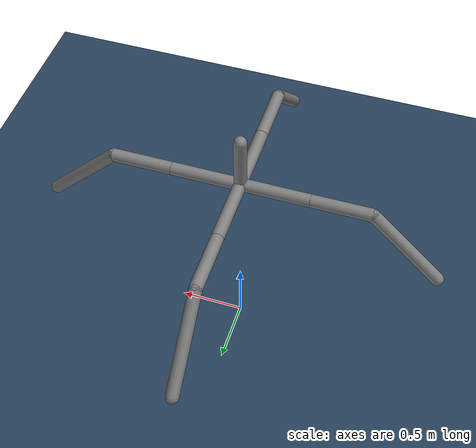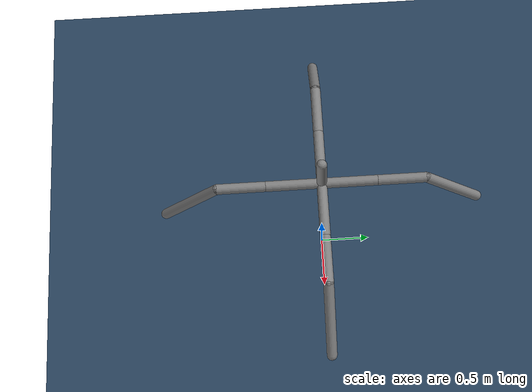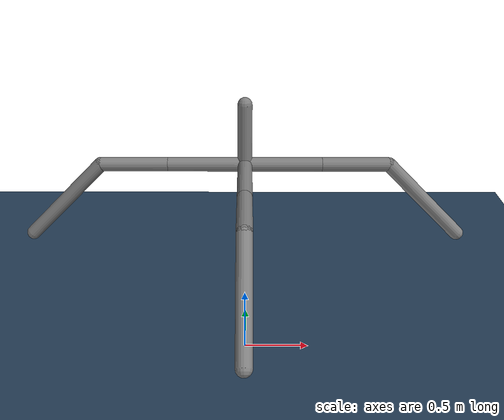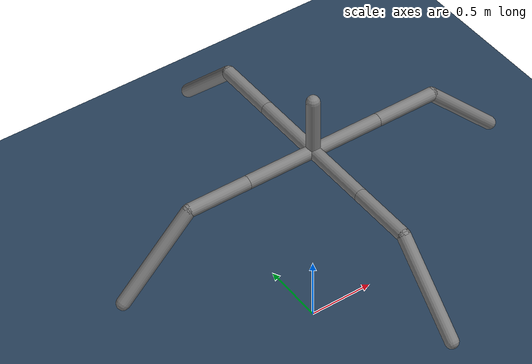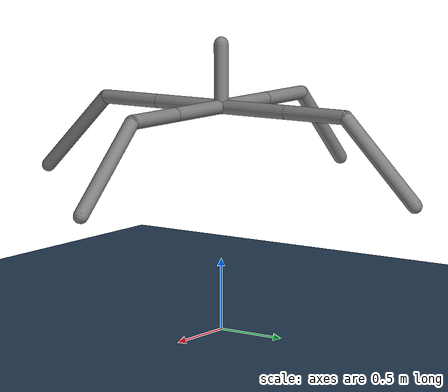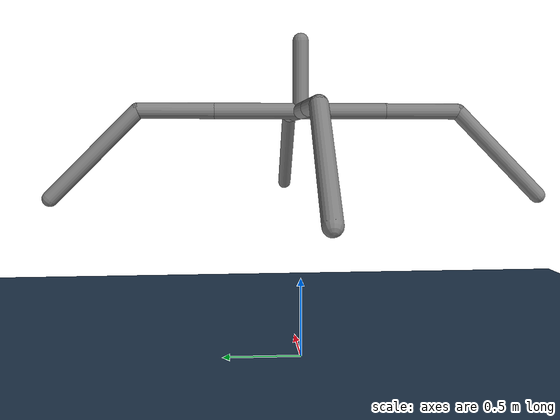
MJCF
<mujoco>
  <compiler meshdir="./mesh"/>
  <default>
    <motor ctrlrange="-1. 1." ctrllimited="true"/>
  </default>

  <worldbody>
    <geom name="floor" size="0 0 .05" type="plane" material="grid" condim="3"/>
    <camera name="cam0" pos="-0.5 -7.5 3" xyaxes="1 -0.05 0 0 0.3 1" mode="trackcom"/>
    <body name="root" pos="0 0 2">
    <joint type="free"/>
      <geom type="capsule" name="root geom" size="0.05" fromto="0 0 0 -0.0 0.0 -0.43334996700286865"/>
      <body name="body1_l" pos="-0.0 0.0 -0.43334996700286865">
        <geom type="capsule" name="body1_l geom" size="0.05" fromto="0 0 0 0.5378625392913818 0.0 0.0"/>
        <body name="leg1_l" pos="0.5378625392913818 0.0 0.0">
          <joint axis="0 0 1" name="j0" range="-45 45"/>
          <geom type="capsule" name="leg1_l geom" size="0.05" fromto="0 0 0 0.46852874755859375 0.0 0.0"/>
          <body name="foot1_l" pos="0.46852874755859375 0.0 0.0">
            <joint axis="0 1 0" name="j4" range="-45 45"/>
            <geom type="capsule" name="foot1_l geom" size="0.05" fromto="0 0 0 0.5399634838104248 7.254887179897196e-08 -0.5399635434150696"/>
          </body>
        </body>
      </body>
      <body name="body1_r" pos="-0.0 0.0 -0.43334996700286865">
        <geom type="capsule" name="body1_r geom" size="0.05" fromto="0 0 0 -0.5378625392913818 0.0 0.0"/>
        <body name="leg1_r" pos="-0.5378625392913818 0.0 0.0">
          <joint axis="0 0 1" name="j1" range="-45 45"/>
          <geom type="capsule" name="leg1_r geom" size="0.05" fromto="0 0 0 -0.46852874755859375 0.0 0.0"/>
          <body name="foot1_r" pos="-0.46852874755859375 0.0 0.0">
            <joint axis="0 1 0" name="j5" range="-45 45"/>
            <geom type="capsule" name="foot1_r geom" size="0.05" fromto="0 0 0 -0.5399634838104248 7.254887179897196e-08 -0.5399635434150696"/>
          </body>
        </body>
      </body>
      <body name="body1_l.001" pos="-0.0 0.0 -0.43334996700286865">
        <geom type="capsule" name="body1_l.001 geom" size="0.05" fromto="0 0 0 2.7644951217098424e-08 0.5378625392913818 0.0"/>
        <body name="leg1_l.001" pos="2.7644951217098424e-08 0.5378625392913818 0.0">
          <joint axis="0 0 1" name="j2" range="-45 45"/>
          <geom type="capsule" name="leg1_l.001 geom" size="0.05" fromto="0 0 0 5.960464477539063e-08 0.46852874755859375 0.0"/>
          <body name="foot1_l.001" pos="5.960464477539063e-08 0.46852874755859375 0.0">
            <joint axis="1 0 0" name="j6" range="-45 45"/>
            <geom type="capsule" name="foot1_l.001 geom" size="0.05" fromto="0 0 0 0.0 0.5399634838104248 -0.5399635434150696"/>
          </body>
        </body>
      </body>
      <body name="body1_r.001" pos="-0.0 0.0 -0.43334996700286865">
        <geom type="capsule" name="body1_r.001 geom" size="0.05" fromto="0 0 0 -3.19596935582922e-08 -0.5378625392913818 0.0"/>
        <body name="leg1_r.001" pos="-3.19596935582922e-08 -0.5378625392913818 0.0">
          <joint axis="0 0 1" name="j3" range="-45 45"/>
          <geom type="capsule" name="leg1_r.001 geom" size="0.05" fromto="0 0 0 0.0 -0.46852874755859375 0.0"/>
          <body name="foot1_r.001" pos="0.0 -0.46852874755859375 0.0">
            <joint axis="1 0 0" name="j7" range="-45 45"/>
            <geom type="capsule" name="foot1_r.001 geom" size="0.05" fromto="0 0 0 -1.1920928955078125e-07 -0.5399634838104248 -0.5399635434150696"/>
          </body>
        </body>
      </body>
    </body>
  </worldbody>

    <actuator>
    <motor name="p1" joint="j0" gear="150"/>
    <motor name="p2" joint="j1" gear="150"/>
    <motor name="p3" joint="j2" gear="150"/>
    <motor name="p4" joint="j3" gear="150"/>
    <motor name="p5" joint="j4" gear="150"/>
    <motor name="p6" joint="j5" gear="150"/>
    <motor name="p7" joint="j6" gear="150"/>
    <motor name="p8" joint="j7" gear="150"/>
  </actuator>

<asset>
<texture name="grid" type="2d" builtin="checker" width="512" height="512" rgb1=".1 .2 .3" rgb2=".2 .3 .4"/>
<material name="grid" texture="grid" texrepeat="1 1" texuniform="true" reflectance=".2"/>
  </asset>
</mujoco>
